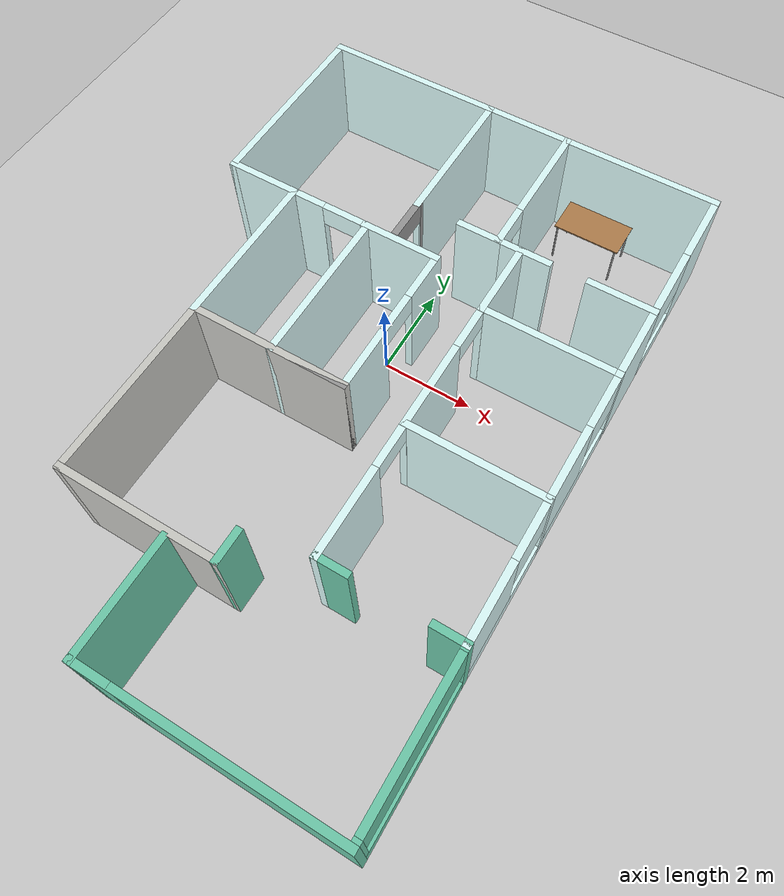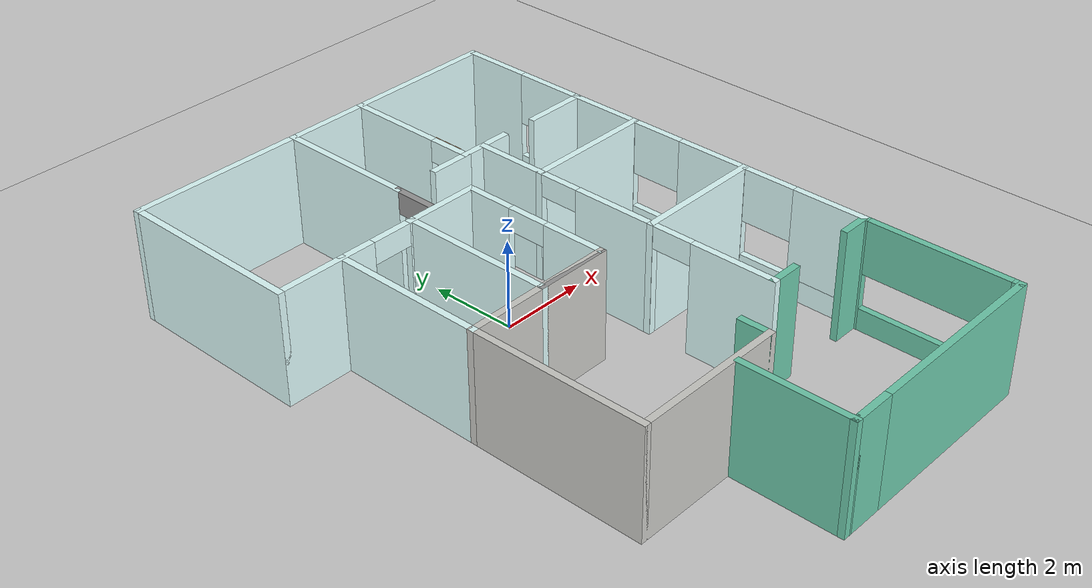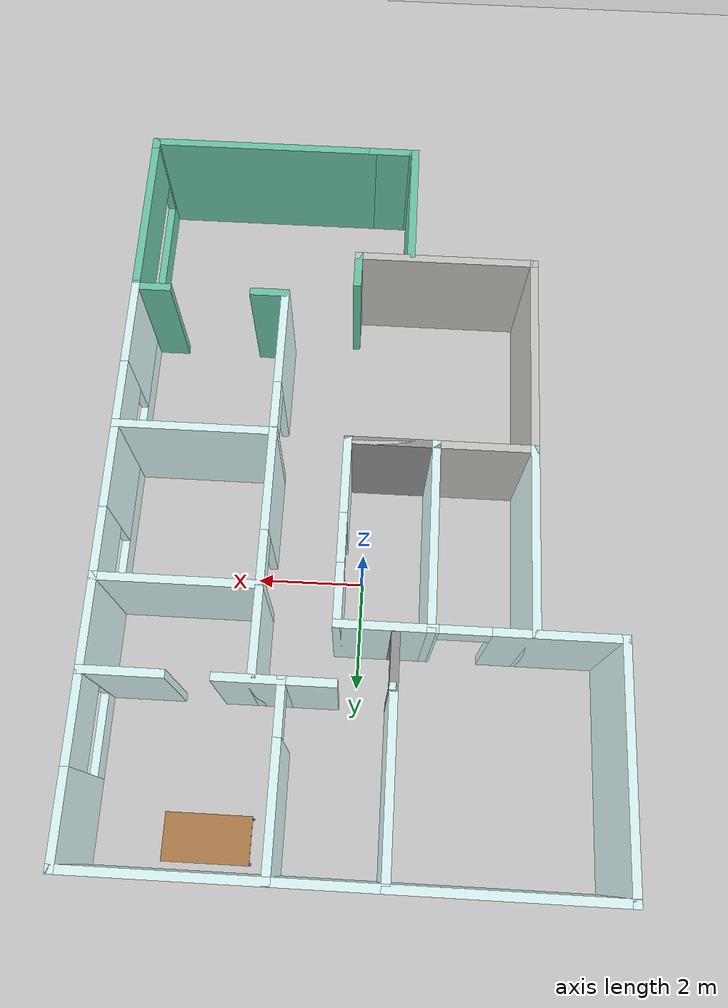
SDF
<sdf version="1.6">
 <world name="default">
  <model name="ground_plane">
   <static>1</static>
   <link name="link">
    <collision name="collision">
     <geometry><plane><normal>0 0 1</normal><size>100 100</size></plane></geometry>
     <surface><friction><ode><mu>100</mu><mu2>50</mu2></ode></friction></surface>
    </collision>
    <visual name="visual">
     <cast_shadows>0</cast_shadows>
     <geometry><plane><normal>0 0 1</normal><size>100 100</size></plane></geometry>
     <material>
      <script><uri>file://media/materials/scripts/gazebo.material</uri><name>Gazebo/Grey</name></script>
     </material>
    </visual>
   </link>
  </model>
  <model name="Building">
   <pose>0.06239 -1.44031 0 0 -0 0</pose>
   <link name="Wall_1">
    <collision name="Wall_1_Collision">
     <geometry><box><size>3.5 0.15 2.5</size></box></geometry>
     <pose>0 0 1.25 0 -0 0</pose>
    </collision>
    <visual name="Wall_1_Visual">
     <pose>0 0 1.25 0 -0 0</pose>
     <geometry><box><size>3.5 0.15 2.5</size></box></geometry>
     <material>
      <script><uri>file://media/materials/scripts/gazebo.material</uri><name>Gazebo/Grey</name></script>
      <ambient>0.878431 1 0.996078 1</ambient>
     </material>
     <meta><layer>0</layer></meta>
    </visual>
    <pose>2.85 6.875 0 0 -0 0</pose>
   </link>
   <link name="Wall_10">
    <pose>-2.1 2.775 0 0 -0 0</pose>
    <visual name="Wall_10_Visual_0">
     <pose>-1.3425 0 1.25 0 -0 0</pose>
     <geometry><box><size>2.315 0.15 2.5</size></box></geometry>
     <material>
      <script><uri>file://media/materials/scripts/gazebo.material</uri><name>Gazebo/Grey</name></script>
      <ambient>0.878431 1 0.996078 1</ambient>
     </material>
     <meta><layer>0</layer></meta>
    </visual>
    <collision name="Wall_10_Collision_0">
     <geometry><box><size>2.315 0.15 2.5</size></box></geometry>
     <pose>-1.3425 0 1.25 0 -0 0</pose>
    </collision>
    <visual name="Wall_10_Visual_1">
     <pose>1.6075 0 1.25 0 -0 0</pose>
     <geometry><box><size>1.785 0.15 2.5</size></box></geometry>
     <material>
      <script><uri>file://media/materials/scripts/gazebo.material</uri><name>Gazebo/Grey</name></script>
      <ambient>0.878431 1 0.996078 1</ambient>
     </material>
     <meta><layer>0</layer></meta>
    </visual>
    <collision name="Wall_10_Collision_1">
     <geometry><box><size>1.785 0.15 2.5</size></box></geometry>
     <pose>1.6075 0 1.25 0 -0 0</pose>
    </collision>
    <visual name="Wall_10_Visual_2">
     <pose>0.265 0 2.25 0 -0 0</pose>
     <geometry><box><size>0.9 0.15 0.5</size></box></geometry>
     <material>
      <script><uri>file://media/materials/scripts/gazebo.material</uri><name>Gazebo/Grey</name></script>
      <ambient>0.878431 1 0.996078 1</ambient>
     </material>
     <meta><layer>0</layer></meta>
    </visual>
    <collision name="Wall_10_Collision_2">
     <geometry><box><size>0.9 0.15 0.5</size></box></geometry>
     <pose>0.265 0 2.25 0 -0 0</pose>
    </collision>
   </link>
   <link name="Wall_12">
    <collision name="Wall_12_Collision">
     <geometry><box><size>1.75 0.15 2.5</size></box></geometry>
     <pose>0 0 1.25 0 -0 0</pose>
    </collision>
    <visual name="Wall_12_Visual">
     <pose>0 0 1.25 0 -0 0</pose>
     <geometry><box><size>1.75 0.15 2.5</size></box></geometry>
     <material>
      <script><uri>file://media/materials/scripts/gazebo.material</uri><name>Gazebo/Grey</name></script>
      <ambient>0.878431 1 0.996078 1</ambient>
     </material>
     <meta><layer>0</layer></meta>
    </visual>
    <pose>4.525 2.975 0 0 0 -1.5708</pose>
   </link>
   <link name="Wall_16">
    <collision name="Wall_16_Collision">
     <geometry><box><size>3 0.15 2.5</size></box></geometry>
     <pose>0 0 1.25 0 -0 0</pose>
    </collision>
    <visual name="Wall_16_Visual">
     <pose>0 0 1.25 0 -0 0</pose>
     <geometry><box><size>3 0.15 2.5</size></box></geometry>
     <material>
      <script><uri>file://media/materials/scripts/gazebo.material</uri><name>Gazebo/Grey</name></script>
      <ambient>0.878431 1 0.996078 1</ambient>
     </material>
     <meta><layer>0</layer></meta>
    </visual>
    <pose>3.1 2.175 0 0 -0 3.14159</pose>
   </link>
   <link name="Wall_17">
    <collision name="Wall_17_Collision">
     <geometry><box><size>1.75 0.15 2.5</size></box></geometry>
     <pose>0 0 1.25 0 -0 0</pose>
    </collision>
    <visual name="Wall_17_Visual">
     <pose>0 0 1.25 0 -0 0</pose>
     <geometry><box><size>1.75 0.15 2.5</size></box></geometry>
     <material>
      <script><uri>file://media/materials/scripts/gazebo.material</uri><name>Gazebo/Grey</name></script>
      <ambient>0.878431 1 0.996078 1</ambient>
     </material>
     <meta><layer>0</layer></meta>
    </visual>
    <pose>1.675 2.975 0 0 -0 1.5708</pose>
   </link>
   <link name="Wall_19">
    <pose>4.525 0.75 0 0 0 -1.5708</pose>
    <visual name="Wall_19_Visual_0">
     <pose>-1.4225 0 1.25 0 -0 0</pose>
     <geometry><box><size>0.155 0.15 2.5</size></box></geometry>
     <material>
      <script><uri>file://media/materials/scripts/gazebo.material</uri><name>Gazebo/Grey</name></script>
      <ambient>0.878431 1 0.996078 1</ambient>
     </material>
     <meta><layer>0</layer></meta>
    </visual>
    <collision name="Wall_19_Collision_0">
     <geometry><box><size>0.155 0.15 2.5</size></box></geometry>
     <pose>-1.4225 0 1.25 0 -0 0</pose>
    </collision>
    <visual name="Wall_19_Visual_1">
     <pose>0.0775 0 0.25 0 -0 0</pose>
     <geometry><box><size>2.845 0.15 0.5</size></box></geometry>
     <material>
      <script><uri>file://media/materials/scripts/gazebo.material</uri><name>Gazebo/Grey</name></script>
      <ambient>0.878431 1 0.996078 1</ambient>
     </material>
     <meta><layer>0</layer></meta>
    </visual>
    <collision name="Wall_19_Collision_1">
     <geometry><box><size>2.845 0.15 0.5</size></box></geometry>
     <pose>0.0775 0 0.25 0 -0 0</pose>
    </collision>
    <visual name="Wall_19_Visual_2">
     <pose>0.6625 0 1.5 0 -0 0</pose>
     <geometry><box><size>1.675 0.15 2</size></box></geometry>
     <material>
      <script><uri>file://media/materials/scripts/gazebo.material</uri><name>Gazebo/Grey</name></script>
      <ambient>0.878431 1 0.996078 1</ambient>
     </material>
     <meta><layer>0</layer></meta>
    </visual>
    <collision name="Wall_19_Collision_2">
     <geometry><box><size>1.675 0.15 2</size></box></geometry>
     <pose>0.6625 0 1.5 0 -0 0</pose>
    </collision>
    <visual name="Wall_19_Visual_3">
     <pose>-0.76 0 1.9 0 -0 0</pose>
     <geometry><box><size>1.17 0.15 1.2</size></box></geometry>
     <material>
      <script><uri>file://media/materials/scripts/gazebo.material</uri><name>Gazebo/Grey</name></script>
      <ambient>0.878431 1 0.996078 1</ambient>
     </material>
     <meta><layer>0</layer></meta>
    </visual>
    <collision name="Wall_19_Collision_3">
     <geometry><box><size>1.17 0.15 1.2</size></box></geometry>
     <pose>-0.76 0 1.9 0 -0 0</pose>
    </collision>
   </link>
   <link name="Wall_2">
    <pose>4.525 5.325 0 0 0 -1.5708</pose>
    <visual name="Wall_2_Visual_0">
     <pose>-0.8175 0 1.25 0 -0 0</pose>
     <geometry><box><size>1.615 0.15 2.5</size></box></geometry>
     <material>
      <script><uri>file://media/materials/scripts/gazebo.material</uri><name>Gazebo/Grey</name></script>
      <ambient>0.878431 1 0.996078 1</ambient>
     </material>
     <meta><layer>0</layer></meta>
    </visual>
    <collision name="Wall_2_Collision_0">
     <geometry><box><size>1.615 0.15 2.5</size></box></geometry>
     <pose>-0.8175 0 1.25 0 -0 0</pose>
    </collision>
    <visual name="Wall_2_Visual_1">
     <pose>0.8075 0 0.25 0 -0 0</pose>
     <geometry><box><size>1.635 0.15 0.5</size></box></geometry>
     <material>
      <script><uri>file://media/materials/scripts/gazebo.material</uri><name>Gazebo/Grey</name></script>
      <ambient>0.878431 1 0.996078 1</ambient>
     </material>
     <meta><layer>0</layer></meta>
    </visual>
    <collision name="Wall_2_Collision_1">
     <geometry><box><size>1.635 0.15 0.5</size></box></geometry>
     <pose>0.8075 0 0.25 0 -0 0</pose>
    </collision>
    <visual name="Wall_2_Visual_2">
     <pose>1.5475 0 1.5 0 -0 0</pose>
     <geometry><box><size>0.155 0.15 2</size></box></geometry>
     <material>
      <script><uri>file://media/materials/scripts/gazebo.material</uri><name>Gazebo/Grey</name></script>
      <ambient>0.878431 1 0.996078 1</ambient>
     </material>
     <meta><layer>0</layer></meta>
    </visual>
    <collision name="Wall_2_Collision_2">
     <geometry><box><size>0.155 0.15 2</size></box></geometry>
     <pose>1.5475 0 1.5 0 -0 0</pose>
    </collision>
    <visual name="Wall_2_Visual_3">
     <pose>0.73 0 1.9 0 -0 0</pose>
     <geometry><box><size>1.48 0.15 1.2</size></box></geometry>
     <material>
      <script><uri>file://media/materials/scripts/gazebo.material</uri><name>Gazebo/Grey</name></script>
      <ambient>0.878431 1 0.996078 1</ambient>
     </material>
     <meta><layer>0</layer></meta>
    </visual>
    <collision name="Wall_2_Collision_3">
     <geometry><box><size>1.48 0.15 1.2</size></box></geometry>
     <pose>0.73 0 1.9 0 -0 0</pose>
    </collision>
   </link>
   <link name="Wall_20">
    <collision name="Wall_20_Collision">
     <geometry><box><size>3 0.15 2.5</size></box></geometry>
     <pose>0 0 1.25 0 -0 0</pose>
    </collision>
    <visual name="Wall_20_Visual">
     <pose>0 0 1.25 0 -0 0</pose>
     <geometry><box><size>3 0.15 2.5</size></box></geometry>
     <material>
      <script><uri>file://media/materials/scripts/gazebo.material</uri><name>Gazebo/Grey</name></script>
      <ambient>0.878431 1 0.996078 1</ambient>
     </material>
     <meta><layer>0</layer></meta>
    </visual>
    <pose>3.1 -0.675 0 0 -0 3.14159</pose>
   </link>
   <link name="Wall_21">
    <pose>1.675 0.75 0 0 -0 1.5708</pose>
    <visual name="Wall_21_Visual_0">
     <pose>-0.5275 0 1.25 0 -0 0</pose>
     <geometry><box><size>1.945 0.15 2.5</size></box></geometry>
     <material>
      <script><uri>file://media/materials/scripts/gazebo.material</uri><name>Gazebo/Grey</name></script>
      <ambient>0.878431 1 0.996078 1</ambient>
     </material>
     <meta><layer>0</layer></meta>
    </visual>
    <collision name="Wall_21_Collision_0">
     <geometry><box><size>1.945 0.15 2.5</size></box></geometry>
     <pose>-0.5275 0 1.25 0 -0 0</pose>
    </collision>
    <visual name="Wall_21_Visual_1">
     <pose>1.4225 0 1.25 0 -0 0</pose>
     <geometry><box><size>0.155 0.15 2.5</size></box></geometry>
     <material>
      <script><uri>file://media/materials/scripts/gazebo.material</uri><name>Gazebo/Grey</name></script>
      <ambient>0.878431 1 0.996078 1</ambient>
     </material>
     <meta><layer>0</layer></meta>
    </visual>
    <collision name="Wall_21_Collision_1">
     <geometry><box><size>0.155 0.15 2.5</size></box></geometry>
     <pose>1.4225 0 1.25 0 -0 0</pose>
    </collision>
    <visual name="Wall_21_Visual_2">
     <pose>0.895 0 2.25 0 -0 0</pose>
     <geometry><box><size>0.9 0.15 0.5</size></box></geometry>
     <material>
      <script><uri>file://media/materials/scripts/gazebo.material</uri><name>Gazebo/Grey</name></script>
      <ambient>0.878431 1 0.996078 1</ambient>
     </material>
     <meta><layer>0</layer></meta>
    </visual>
    <collision name="Wall_21_Collision_2">
     <geometry><box><size>0.9 0.15 0.5</size></box></geometry>
     <pose>0.895 0 2.25 0 -0 0</pose>
    </collision>
   </link>
   <link name="Wall_23">
    <pose>0.325 1.1 0 0 0 -1.5708</pose>
    <visual name="Wall_23_Visual_0">
     <pose>-1.1775 0 1.25 0 -0 0</pose>
     <geometry><box><size>1.145 0.15 2.5</size></box></geometry>
     <material>
      <script><uri>file://media/materials/scripts/gazebo.material</uri><name>Gazebo/Grey</name></script>
      <ambient>0.878431 1 0.996078 1</ambient>
     </material>
     <meta><layer>0</layer></meta>
    </visual>
    <collision name="Wall_23_Collision_0">
     <geometry><box><size>1.145 0.15 2.5</size></box></geometry>
     <pose>-1.1775 0 1.25 0 -0 0</pose>
    </collision>
    <visual name="Wall_23_Visual_1">
     <pose>1.0225 0 1.25 0 -0 0</pose>
     <geometry><box><size>1.455 0.15 2.5</size></box></geometry>
     <material>
      <script><uri>file://media/materials/scripts/gazebo.material</uri><name>Gazebo/Grey</name></script>
      <ambient>0.878431 1 0.996078 1</ambient>
     </material>
     <meta><layer>0</layer></meta>
    </visual>
    <collision name="Wall_23_Collision_1">
     <geometry><box><size>1.455 0.15 2.5</size></box></geometry>
     <pose>1.0225 0 1.25 0 -0 0</pose>
    </collision>
    <visual name="Wall_23_Visual_2">
     <pose>-0.155 0 2.25 0 -0 0</pose>
     <geometry><box><size>0.9 0.15 0.5</size></box></geometry>
     <material>
      <script><uri>file://media/materials/scripts/gazebo.material</uri><name>Gazebo/Grey</name></script>
      <ambient>0.878431 1 0.996078 1</ambient>
     </material>
     <meta><layer>0</layer></meta>
    </visual>
    <collision name="Wall_23_Collision_2">
     <geometry><box><size>0.9 0.15 0.5</size></box></geometry>
     <pose>-0.155 0 2.25 0 -0 0</pose>
    </collision>
   </link>
   <link name="Wall_25">
    <pose>4.525 -2.1 0 0 0 -1.5708</pose>
    <visual name="Wall_25_Visual_0">
     <pose>-1.4225 0 1.25 0 -0 0</pose>
     <geometry><box><size>0.155 0.15 2.5</size></box></geometry>
     <material>
      <script><uri>file://media/materials/scripts/gazebo.material</uri><name>Gazebo/Grey</name></script>
      <ambient>0.878431 1 0.996078 1</ambient>
     </material>
     <meta><layer>0</layer></meta>
    </visual>
    <collision name="Wall_25_Collision_0">
     <geometry><box><size>0.155 0.15 2.5</size></box></geometry>
     <pose>-1.4225 0 1.25 0 -0 0</pose>
    </collision>
    <visual name="Wall_25_Visual_1">
     <pose>0.0775 0 0.25 0 -0 0</pose>
     <geometry><box><size>2.845 0.15 0.5</size></box></geometry>
     <material>
      <script><uri>file://media/materials/scripts/gazebo.material</uri><name>Gazebo/Grey</name></script>
      <ambient>0.878431 1 0.996078 1</ambient>
     </material>
     <meta><layer>0</layer></meta>
    </visual>
    <collision name="Wall_25_Collision_1">
     <geometry><box><size>2.845 0.15 0.5</size></box></geometry>
     <pose>0.0775 0 0.25 0 -0 0</pose>
    </collision>
    <visual name="Wall_25_Visual_2">
     <pose>0.6625 0 1.5 0 -0 0</pose>
     <geometry><box><size>1.675 0.15 2</size></box></geometry>
     <material>
      <script><uri>file://media/materials/scripts/gazebo.material</uri><name>Gazebo/Grey</name></script>
      <ambient>0.878431 1 0.996078 1</ambient>
     </material>
     <meta><layer>0</layer></meta>
    </visual>
    <collision name="Wall_25_Collision_2">
     <geometry><box><size>1.675 0.15 2</size></box></geometry>
     <pose>0.6625 0 1.5 0 -0 0</pose>
    </collision>
    <visual name="Wall_25_Visual_3">
     <pose>-0.76 0 1.9 0 -0 0</pose>
     <geometry><box><size>1.17 0.15 1.2</size></box></geometry>
     <material>
      <script><uri>file://media/materials/scripts/gazebo.material</uri><name>Gazebo/Grey</name></script>
      <ambient>0.878431 1 0.996078 1</ambient>
     </material>
     <meta><layer>0</layer></meta>
    </visual>
    <collision name="Wall_25_Collision_3">
     <geometry><box><size>1.17 0.15 1.2</size></box></geometry>
     <pose>-0.76 0 1.9 0 -0 0</pose>
    </collision>
   </link>
   <link name="Wall_26">
    <collision name="Wall_26_Collision">
     <geometry><box><size>0.75 0.15 2.5</size></box></geometry>
     <pose>0 0 1.25 0 -0 0</pose>
    </collision>
    <visual name="Wall_26_Visual">
     <pose>0 0 1.25 0 -0 0</pose>
     <geometry><box><size>0.75 0.15 2.5</size></box></geometry>
     <material>
      <script><uri>file://media/materials/scripts/gazebo.material</uri><name>Gazebo/Grey</name></script>
      <ambient>0.435294 0.796078 0.67451 1</ambient>
     </material>
     <meta><layer>0</layer></meta>
    </visual>
    <pose>4.225 -3.525 0 0 -0 3.14159</pose>
   </link>
   <link name="Wall_28">
    <pose>1.675 -2.1 0 0 0 -1.5708</pose>
    <visual name="Wall_28_Visual_0">
     <pose>-1.4225 0 1.25 0 -0 0</pose>
     <geometry><box><size>0.155 0.15 2.5</size></box></geometry>
     <material>
      <script><uri>file://media/materials/scripts/gazebo.material</uri><name>Gazebo/Grey</name></script>
      <ambient>0.878431 1 0.996078 1</ambient>
     </material>
     <meta><layer>0</layer></meta>
    </visual>
    <collision name="Wall_28_Collision_0">
     <geometry><box><size>0.155 0.15 2.5</size></box></geometry>
     <pose>-1.4225 0 1.25 0 -0 0</pose>
    </collision>
    <visual name="Wall_28_Visual_1">
     <pose>0.5275 0 1.25 0 -0 0</pose>
     <geometry><box><size>1.945 0.15 2.5</size></box></geometry>
     <material>
      <script><uri>file://media/materials/scripts/gazebo.material</uri><name>Gazebo/Grey</name></script>
      <ambient>0.878431 1 0.996078 1</ambient>
     </material>
     <meta><layer>0</layer></meta>
    </visual>
    <collision name="Wall_28_Collision_1">
     <geometry><box><size>1.945 0.15 2.5</size></box></geometry>
     <pose>0.5275 0 1.25 0 -0 0</pose>
    </collision>
    <visual name="Wall_28_Visual_2">
     <pose>-0.895 0 2.25 0 -0 0</pose>
     <geometry><box><size>0.9 0.15 0.5</size></box></geometry>
     <material>
      <script><uri>file://media/materials/scripts/gazebo.material</uri><name>Gazebo/Grey</name></script>
      <ambient>0.878431 1 0.996078 1</ambient>
     </material>
     <meta><layer>0</layer></meta>
    </visual>
    <collision name="Wall_28_Collision_2">
     <geometry><box><size>0.9 0.15 0.5</size></box></geometry>
     <pose>-0.895 0 2.25 0 -0 0</pose>
    </collision>
   </link>
   <link name="Wall_29">
    <collision name="Wall_29_Collision">
     <geometry><box><size>0.75 0.15 2.5</size></box></geometry>
     <pose>0 0 1.25 0 -0 0</pose>
    </collision>
    <visual name="Wall_29_Visual">
     <pose>0 0 1.25 0 -0 0</pose>
     <geometry><box><size>0.75 0.15 2.5</size></box></geometry>
     <material>
      <script><uri>file://media/materials/scripts/gazebo.material</uri><name>Gazebo/Grey</name></script>
      <ambient>0.435294 0.796078 0.67451 1</ambient>
     </material>
     <meta><layer>0</layer></meta>
    </visual>
    <pose>1.975 -3.525 0 0 -0 0</pose>
   </link>
   <link name="Wall_31">
    <collision name="Wall_31_Collision">
     <geometry><box><size>1.73 0.15 2.5</size></box></geometry>
     <pose>0 0 1.25 0 -0 0</pose>
    </collision>
    <visual name="Wall_31_Visual">
     <pose>0 0 1.25 0 -0 0</pose>
     <geometry><box><size>1.73 0.15 2.5</size></box></geometry>
     <material>
      <script><uri>file://media/materials/scripts/gazebo.material</uri><name>Gazebo/Grey</name></script>
      <ambient>1 1 1 1</ambient>
     </material>
     <meta><layer>0</layer></meta>
    </visual>
    <pose>-0.465 -0.575 0 0 -0 3.14159</pose>
   </link>
   <link name="Wall_32">
    <collision name="Wall_32_Collision">
     <geometry><box><size>3.5 0.15 2.5</size></box></geometry>
     <pose>0 0 1.25 0 -0 0</pose>
    </collision>
    <visual name="Wall_32_Visual">
     <pose>0 0 1.25 0 -0 0</pose>
     <geometry><box><size>3.5 0.15 2.5</size></box></geometry>
     <material>
      <script><uri>file://media/materials/scripts/gazebo.material</uri><name>Gazebo/Grey</name></script>
      <ambient>0.878431 1 0.996078 1</ambient>
     </material>
     <meta><layer>0</layer></meta>
    </visual>
    <pose>-1.265 1.1 0 0 -0 1.5708</pose>
   </link>
   <link name="Wall_34">
    <collision name="Wall_34_Collision">
     <geometry><box><size>3.5 0.15 2.5</size></box></geometry>
     <pose>0 0 1.25 0 -0 0</pose>
    </collision>
    <visual name="Wall_34_Visual">
     <pose>0 0 1.25 0 -0 0</pose>
     <geometry><box><size>3.5 0.15 2.5</size></box></geometry>
     <material>
      <script><uri>file://media/materials/scripts/gazebo.material</uri><name>Gazebo/CeilingTiled</name></script>
      <ambient>0.435294 0.796078 0.67451 1</ambient>
     </material>
     <meta><layer>0</layer></meta>
    </visual>
    <pose>-1.35 -0.575 0 0 -0 3.14159</pose>
   </link>
   <link name="Wall_36">
    <collision name="Wall_36_Collision">
     <geometry><box><size>4 0.15 2.5</size></box></geometry>
     <pose>0 0 1.25 0 -0 0</pose>
    </collision>
    <visual name="Wall_36_Visual">
     <pose>0 0 1.25 0 -0 0</pose>
     <geometry><box><size>4 0.15 2.5</size></box></geometry>
     <material>
      <script><uri>file://media/materials/scripts/gazebo.material</uri><name>Gazebo/CeilingTiled</name></script>
      <ambient>0.435294 0.796078 0.67451 1</ambient>
     </material>
     <meta><layer>0</layer></meta>
    </visual>
    <pose>-3.025 -2.5 0 0 0 -1.5708</pose>
   </link>
   <link name="Wall_37">
    <collision name="Wall_37_Collision">
     <geometry><box><size>3.5 0.15 2.5</size></box></geometry>
     <pose>0 0 1.25 0 -0 0</pose>
    </collision>
    <visual name="Wall_37_Visual">
     <pose>0 0 1.25 0 -0 0</pose>
     <geometry><box><size>3.5 0.15 2.5</size></box></geometry>
     <material>
      <script><uri>file://media/materials/scripts/gazebo.material</uri><name>Gazebo/CeilingTiled</name></script>
      <ambient>0.435294 0.796078 0.67451 1</ambient>
     </material>
     <meta><layer>0</layer></meta>
    </visual>
    <pose>-1.35 -4.425 0 0 -0 0</pose>
   </link>
   <link name="Wall_38">
    <collision name="Wall_38_Collision">
     <geometry><box><size>0.75 0.15 2.5</size></box></geometry>
     <pose>0 0 1.25 0 -0 0</pose>
    </collision>
    <visual name="Wall_38_Visual">
     <pose>0 0 1.25 0 -0 0</pose>
     <geometry><box><size>0.75 0.15 2.5</size></box></geometry>
     <material>
      <script><uri>file://media/materials/scripts/gazebo.material</uri><name>Gazebo/Grey</name></script>
      <ambient>0.435294 0.796078 0.67451 1</ambient>
     </material>
     <meta><layer>0</layer></meta>
    </visual>
    <pose>0.325 -4.125 0 0 -0 1.5708</pose>
   </link>
   <link name="Wall_4">
    <pose>1.175 5.325 0 0 -0 1.5708</pose>
    <visual name="Wall_4_Visual_0">
     <pose>-1.5775 0 1.25 0 -0 0</pose>
     <geometry><box><size>0.095 0.15 2.5</size></box></geometry>
     <material>
      <script><uri>file://media/materials/scripts/gazebo.material</uri><name>Gazebo/Grey</name></script>
      <ambient>0.878431 1 0.996078 1</ambient>
     </material>
     <meta><layer>0</layer></meta>
    </visual>
    <collision name="Wall_4_Collision_0">
     <geometry><box><size>0.095 0.15 2.5</size></box></geometry>
     <pose>-1.5775 0 1.25 0 -0 0</pose>
    </collision>
    <visual name="Wall_4_Visual_1">
     <pose>0.4975 0 1.25 0 -0 0</pose>
     <geometry><box><size>2.255 0.15 2.5</size></box></geometry>
     <material>
      <script><uri>file://media/materials/scripts/gazebo.material</uri><name>Gazebo/Grey</name></script>
      <ambient>0.878431 1 0.996078 1</ambient>
     </material>
     <meta><layer>0</layer></meta>
    </visual>
    <collision name="Wall_4_Collision_1">
     <geometry><box><size>2.255 0.15 2.5</size></box></geometry>
     <pose>0.4975 0 1.25 0 -0 0</pose>
    </collision>
    <visual name="Wall_4_Visual_2">
     <pose>-1.08 0 2.25 0 -0 0</pose>
     <geometry><box><size>0.9 0.15 0.5</size></box></geometry>
     <material>
      <script><uri>file://media/materials/scripts/gazebo.material</uri><name>Gazebo/Grey</name></script>
      <ambient>0.878431 1 0.996078 1</ambient>
     </material>
     <meta><layer>0</layer></meta>
    </visual>
    <collision name="Wall_4_Collision_2">
     <geometry><box><size>0.9 0.15 0.5</size></box></geometry>
     <pose>-1.08 0 2.25 0 -0 0</pose>
    </collision>
   </link>
   <link name="Wall_42">
    <pose>4.525 -5.2 0 0 0 -1.5708</pose>
    <visual name="Wall_42_Visual_0">
     <pose>-1.6525 0 1.25 0 -0 0</pose>
     <geometry><box><size>0.195 0.15 2.5</size></box></geometry>
     <material>
      <script><uri>file://media/materials/scripts/gazebo.material</uri><name>Gazebo/Grey</name></script>
      <ambient>0.435294 0.796078 0.67451 1</ambient>
     </material>
     <meta><layer>0</layer></meta>
    </visual>
    <collision name="Wall_42_Collision_0">
     <geometry><box><size>0.195 0.15 2.5</size></box></geometry>
     <pose>-1.6525 0 1.25 0 -0 0</pose>
    </collision>
    <visual name="Wall_42_Visual_1">
     <pose>0.0975 0 0.25 0 -0 0</pose>
     <geometry><box><size>3.305 0.15 0.5</size></box></geometry>
     <material>
      <script><uri>file://media/materials/scripts/gazebo.material</uri><name>Gazebo/Grey</name></script>
      <ambient>0.435294 0.796078 0.67451 1</ambient>
     </material>
     <meta><layer>0</layer></meta>
    </visual>
    <collision name="Wall_42_Collision_1">
     <geometry><box><size>3.305 0.15 0.5</size></box></geometry>
     <pose>0.0975 0 0.25 0 -0 0</pose>
    </collision>
    <visual name="Wall_42_Visual_2">
     <pose>1.6325 0 1.5 0 -0 0</pose>
     <geometry><box><size>0.235 0.15 2</size></box></geometry>
     <material>
      <script><uri>file://media/materials/scripts/gazebo.material</uri><name>Gazebo/Grey</name></script>
      <ambient>0.435294 0.796078 0.67451 1</ambient>
     </material>
     <meta><layer>0</layer></meta>
    </visual>
    <collision name="Wall_42_Collision_2">
     <geometry><box><size>0.235 0.15 2</size></box></geometry>
     <pose>1.6325 0 1.5 0 -0 0</pose>
    </collision>
    <visual name="Wall_42_Visual_3">
     <pose>-0.02 0 1.9 0 -0 0</pose>
     <geometry><box><size>3.07 0.15 1.2</size></box></geometry>
     <material>
      <script><uri>file://media/materials/scripts/gazebo.material</uri><name>Gazebo/Grey</name></script>
      <ambient>0.435294 0.796078 0.67451 1</ambient>
     </material>
     <meta><layer>0</layer></meta>
    </visual>
    <collision name="Wall_42_Collision_3">
     <geometry><box><size>3.07 0.15 1.2</size></box></geometry>
     <pose>-0.02 0 1.9 0 -0 0</pose>
    </collision>
   </link>
   <link name="Wall_43">
    <collision name="Wall_43_Collision">
     <geometry><box><size>4.5 0.15 2.5</size></box></geometry>
     <pose>0 0 1.25 0 -0 0</pose>
    </collision>
    <visual name="Wall_43_Visual">
     <pose>0 0 1.25 0 -0 0</pose>
     <geometry><box><size>4.5 0.15 2.5</size></box></geometry>
     <material>
      <script><uri>file://media/materials/scripts/gazebo.material</uri><name>Gazebo/Grey</name></script>
      <ambient>0.435294 0.796078 0.67451 1</ambient>
     </material>
     <meta><layer>0</layer></meta>
    </visual>
    <pose>2.35 -6.875 0 0 -0 3.14159</pose>
   </link>
   <link name="Wall_45">
    <pose>-0.25 -6.875 0 0 -0 3.14159</pose>
    <visual name="Wall_45_Visual_0">
     <pose>0 0 1.25 0 -0 0</pose>
     <geometry><box><size>1 0.15 2.5</size></box></geometry>
     <material>
      <script><uri>file://media/materials/scripts/gazebo.material</uri><name>Gazebo/Grey</name></script>
      <ambient>0.435294 0.796078 0.67451 1</ambient>
     </material>
     <meta><layer>0</layer></meta>
    </visual>
    <collision name="Wall_45_Collision_0">
     <geometry><box><size>1 0.15 2.5</size></box></geometry>
     <pose>0 0 1.25 0 -0 0</pose>
    </collision>
    <visual name="Wall_45_Visual_1">
     <pose>0.4025 0 1.25 0 -0 0</pose>
     <geometry><box><size>0.195 0.15 2.5</size></box></geometry>
     <material>
      <script><uri>file://media/materials/scripts/gazebo.material</uri><name>Gazebo/Grey</name></script>
      <ambient>0.435294 0.796078 0.67451 1</ambient>
     </material>
     <meta><layer>0</layer></meta>
    </visual>
    <collision name="Wall_45_Collision_1">
     <geometry><box><size>0.195 0.15 2.5</size></box></geometry>
     <pose>0.4025 0 1.25 0 -0 0</pose>
    </collision>
   </link>
   <link name="Wall_46">
    <collision name="Wall_46_Collision">
     <geometry><box><size>2.5 0.15 2.5</size></box></geometry>
     <pose>0 0 1.25 0 -0 0</pose>
    </collision>
    <visual name="Wall_46_Visual">
     <pose>0 0 1.25 0 -0 0</pose>
     <geometry><box><size>2.5 0.15 2.5</size></box></geometry>
     <material>
      <script><uri>file://media/materials/scripts/gazebo.material</uri><name>Gazebo/Grey</name></script>
      <ambient>0.435294 0.796078 0.67451 1</ambient>
     </material>
     <meta><layer>0</layer></meta>
    </visual>
    <pose>-0.675 -5.7 0 0 -0 1.5708</pose>
   </link>
   <link name="Wall_48">
    <pose>-0.675 3.35 0 0 0 -1.5708</pose>
    <visual name="Wall_48_Visual_0">
     <pose>-0.4525 0 1.25 0 -0 0</pose>
     <geometry><box><size>0.095 0.15 2.5</size></box></geometry>
     <material>
      <script><uri>file://media/materials/scripts/gazebo.material</uri><name>Gazebo/Grey</name></script>
      <ambient>1 1 1 1</ambient>
     </material>
     <meta><layer>0</layer></meta>
    </visual>
    <collision name="Wall_48_Collision_0">
     <geometry><box><size>0.095 0.15 2.5</size></box></geometry>
     <pose>-0.4525 0 1.25 0 -0 0</pose>
    </collision>
    <visual name="Wall_48_Visual_1">
     <pose>0.4975 0 1.25 0 -0 0</pose>
     <geometry><box><size>0.005 0.15 2.5</size></box></geometry>
     <material>
      <script><uri>file://media/materials/scripts/gazebo.material</uri><name>Gazebo/Grey</name></script>
      <ambient>1 1 1 1</ambient>
     </material>
     <meta><layer>0</layer></meta>
    </visual>
    <collision name="Wall_48_Collision_1">
     <geometry><box><size>0.005 0.15 2.5</size></box></geometry>
     <pose>0.4975 0 1.25 0 -0 0</pose>
    </collision>
    <visual name="Wall_48_Visual_2">
     <pose>0.045 0 2.25 0 -0 0</pose>
     <geometry><box><size>0.9 0.15 0.5</size></box></geometry>
     <material>
      <script><uri>file://media/materials/scripts/gazebo.material</uri><name>Gazebo/Grey</name></script>
      <ambient>1 1 1 1</ambient>
     </material>
     <meta><layer>0</layer></meta>
    </visual>
    <collision name="Wall_48_Collision_2">
     <geometry><box><size>0.9 0.15 0.5</size></box></geometry>
     <pose>0.045 0 2.25 0 -0 0</pose>
    </collision>
   </link>
   <link name="Wall_5">
    <collision name="Wall_5_Collision">
     <geometry><box><size>2 0.15 2.5</size></box></geometry>
     <pose>0 0 1.25 0 -0 0</pose>
    </collision>
    <visual name="Wall_5_Visual">
     <pose>0 0 1.25 0 -0 0</pose>
     <geometry><box><size>2 0.15 2.5</size></box></geometry>
     <material>
      <script><uri>file://media/materials/scripts/gazebo.material</uri><name>Gazebo/Grey</name></script>
      <ambient>0.878431 1 0.996078 1</ambient>
     </material>
     <meta><layer>0</layer></meta>
    </visual>
    <pose>0.25 6.875 0 0 -0 3.14159</pose>
   </link>
   <link name="Wall_50">
    <collision name="Wall_50_Collision">
     <geometry><box><size>1 0.15 2.5</size></box></geometry>
     <pose>0 0 1.25 0 -0 0</pose>
    </collision>
    <visual name="Wall_50_Visual">
     <pose>0 0 1.25 0 -0 0</pose>
     <geometry><box><size>1 0.15 2.5</size></box></geometry>
     <material>
      <script><uri>file://media/materials/scripts/gazebo.material</uri><name>Gazebo/Grey</name></script>
      <ambient>0.878431 1 0.996078 1</ambient>
     </material>
     <meta><layer>0</layer></meta>
    </visual>
    <pose>0.75 3.775 0 0 -0 3.14159</pose>
   </link>
   <link name="Wall_52">
    <collision name="Wall_52_Collision">
     <geometry><box><size>3.5 0.15 2.5</size></box></geometry>
     <pose>0 0 1.25 0 -0 0</pose>
    </collision>
    <visual name="Wall_52_Visual">
     <pose>0 0 1.25 0 -0 0</pose>
     <geometry><box><size>3.5 0.15 2.5</size></box></geometry>
     <material>
      <script><uri>file://media/materials/scripts/gazebo.material</uri><name>Gazebo/Grey</name></script>
      <ambient>0.878431 1 0.996078 1</ambient>
     </material>
     <meta><layer>0</layer></meta>
    </visual>
    <pose>-3.025 1.1 0 0 -0 1.5708</pose>
   </link>
   <link name="Wall_54">
    <collision name="Wall_54_Collision">
     <geometry><box><size>1.25 0.15 2.5</size></box></geometry>
     <pose>0 0 1.25 0 -0 0</pose>
    </collision>
    <visual name="Wall_54_Visual">
     <pose>0 0 1.25 0 -0 0</pose>
     <geometry><box><size>1.25 0.15 2.5</size></box></geometry>
     <material>
      <script><uri>file://media/materials/scripts/gazebo.material</uri><name>Gazebo/Grey</name></script>
      <ambient>0.878431 1 0.996078 1</ambient>
     </material>
     <meta><layer>0</layer></meta>
    </visual>
    <pose>1.725 3.775 0 0 -0 0</pose>
   </link>
   <link name="Wall_56">
    <collision name="Wall_56_Collision">
     <geometry><box><size>1.5 0.15 2.5</size></box></geometry>
     <pose>0 0 1.25 0 -0 0</pose>
    </collision>
    <visual name="Wall_56_Visual">
     <pose>0 0 1.25 0 -0 0</pose>
     <geometry><box><size>1.5 0.15 2.5</size></box></geometry>
     <material>
      <script><uri>file://media/materials/scripts/gazebo.material</uri><name>Gazebo/Grey</name></script>
      <ambient>0.878431 1 0.996078 1</ambient>
     </material>
     <meta><layer>0</layer></meta>
    </visual>
    <pose>3.85 3.775 0 0 -0 3.14159</pose>
   </link>
   <link name="Wall_6">
    <collision name="Wall_6_Collision">
     <geometry><box><size>3.25 0.15 2.5</size></box></geometry>
     <pose>0 0 1.25 0 -0 0</pose>
    </collision>
    <visual name="Wall_6_Visual">
     <pose>0 0 1.25 0 -0 0</pose>
     <geometry><box><size>3.25 0.15 2.5</size></box></geometry>
     <material>
      <script><uri>file://media/materials/scripts/gazebo.material</uri><name>Gazebo/Grey</name></script>
      <ambient>0.878431 1 0.996078 1</ambient>
     </material>
     <meta><layer>0</layer></meta>
    </visual>
    <pose>-0.675 5.325 0 0 0 -1.5708</pose>
   </link>
   <link name="Wall_8">
    <collision name="Wall_8_Collision">
     <geometry><box><size>4 0.15 2.5</size></box></geometry>
     <pose>0 0 1.25 0 -0 0</pose>
    </collision>
    <visual name="Wall_8_Visual">
     <pose>0 0 1.25 0 -0 0</pose>
     <geometry><box><size>4 0.15 2.5</size></box></geometry>
     <material>
      <script><uri>file://media/materials/scripts/gazebo.material</uri><name>Gazebo/Grey</name></script>
      <ambient>0.878431 1 0.996078 1</ambient>
     </material>
     <meta><layer>0</layer></meta>
    </visual>
    <pose>-2.6 6.875 0 0 -0 3.14159</pose>
   </link>
   <link name="Wall_9">
    <collision name="Wall_9_Collision">
     <geometry><box><size>4.25 0.15 2.5</size></box></geometry>
     <pose>0 0 1.25 0 -0 0</pose>
    </collision>
    <visual name="Wall_9_Visual">
     <pose>0 0 1.25 0 -0 0</pose>
     <geometry><box><size>4.25 0.15 2.5</size></box></geometry>
     <material>
      <script><uri>file://media/materials/scripts/gazebo.material</uri><name>Gazebo/Grey</name></script>
      <ambient>0.878431 1 0.996078 1</ambient>
     </material>
     <meta><layer>0</layer></meta>
    </visual>
    <pose>-4.525 4.825 0 0 0 -1.5708</pose>
   </link>
   <static>1</static>
  </model>
  <model name="table">
   <static>1</static>
   <link name="link">
    <collision name="surface">
     <pose>0 0 1 0 -0 0</pose>
     <geometry><box><size>1.5 0.8 0.03</size></box></geometry>
     <surface><friction><ode><mu>0.6</mu><mu2>0.6</mu2></ode></friction></surface>
    </collision>
    <visual name="visual1">
     <pose>0 0 1 0 -0 0</pose>
     <geometry><box><size>1.5 0.8 0.03</size></box></geometry>
     <material>
      <script><uri>file://media/materials/scripts/gazebo.material</uri><name>Gazebo/Wood</name></script>
     </material>
    </visual>
    <collision name="front_left_leg">
     <pose>0.68 0.38 0.5 0 -0 0</pose>
     <geometry><cylinder><radius>0.02</radius><length>1</length></cylinder></geometry>
    </collision>
    <visual name="front_left_leg">
     <pose>0.68 0.38 0.5 0 -0 0</pose>
     <geometry><cylinder><radius>0.02</radius><length>1</length></cylinder></geometry>
     <material>
      <script><uri>file://media/materials/scripts/gazebo.material</uri><name>Gazebo/Grey</name></script>
     </material>
    </visual>
    <collision name="front_right_leg">
     <pose>0.68 -0.38 0.5 0 -0 0</pose>
     <geometry><cylinder><radius>0.02</radius><length>1</length></cylinder></geometry>
    </collision>
    <visual name="front_right_leg">
     <pose>0.68 -0.38 0.5 0 -0 0</pose>
     <geometry><cylinder><radius>0.02</radius><length>1</length></cylinder></geometry>
     <material>
      <script><uri>file://media/materials/scripts/gazebo.material</uri><name>Gazebo/Grey</name></script>
     </material>
    </visual>
    <collision name="back_right_leg">
     <pose>-0.68 -0.38 0.5 0 -0 0</pose>
     <geometry><cylinder><radius>0.02</radius><length>1</length></cylinder></geometry>
    </collision>
    <visual name="back_right_leg">
     <pose>-0.68 -0.38 0.5 0 -0 0</pose>
     <geometry><cylinder><radius>0.02</radius><length>1</length></cylinder></geometry>
     <material>
      <script><uri>file://media/materials/scripts/gazebo.material</uri><name>Gazebo/Grey</name></script>
     </material>
    </visual>
    <collision name="back_left_leg">
     <pose>-0.68 0.38 0.5 0 -0 0</pose>
     <geometry><cylinder><radius>0.02</radius><length>1</length></cylinder></geometry>
    </collision>
    <visual name="back_left_leg">
     <pose>-0.68 0.38 0.5 0 -0 0</pose>
     <geometry><cylinder><radius>0.02</radius><length>1</length></cylinder></geometry>
     <material>
      <script><uri>file://media/materials/scripts/gazebo.material</uri><name>Gazebo/Grey</name></script>
     </material>
    </visual>
   </link>
   <pose>2.39815 4.82979 0 0 -0 0</pose>
  </model>
 </world>
</sdf>
